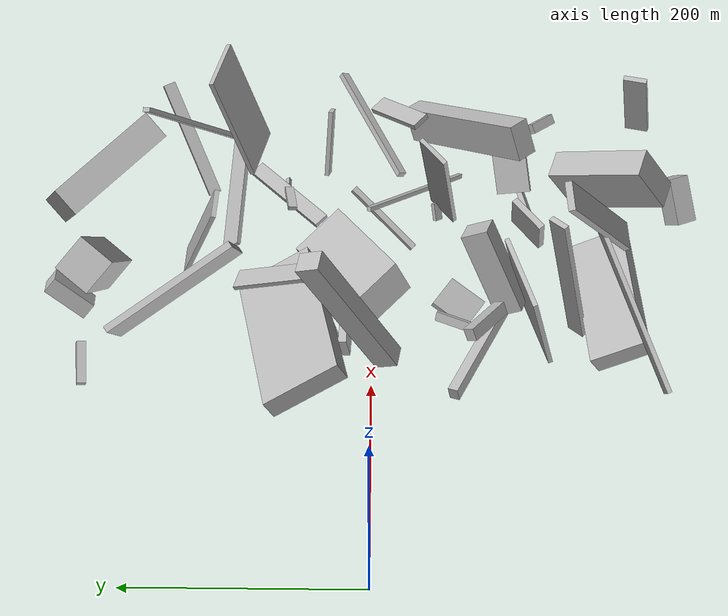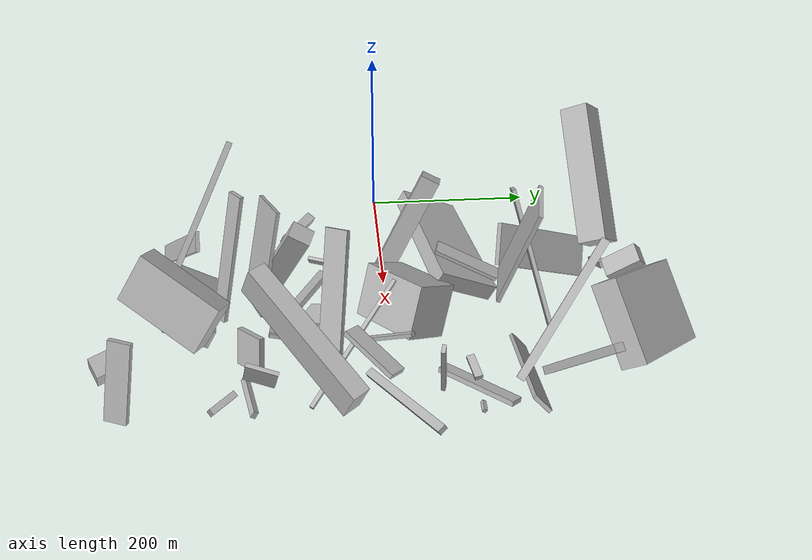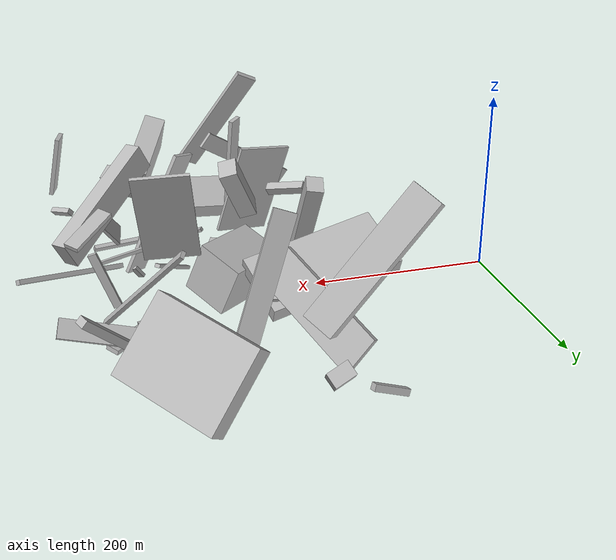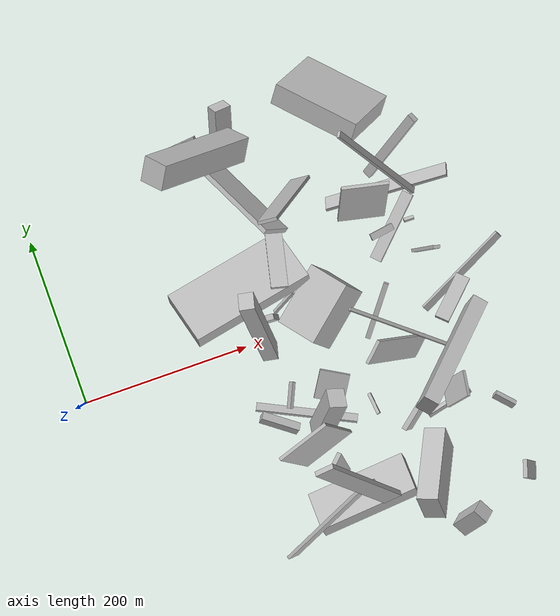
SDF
<sdf version="1.6">
 <world name="default">
  <model name="building_2">
   <static>0</static>
   <pose>206.40266892291086 97.64573193363785 42.467062589102255 0.34001495693390293 -1.0759820120466814 1.466138895373782</pose>
   <link name="link">
    <gravity>0</gravity>
    <pose>0 0 35.0 0 0 0</pose>
    <collision name="collision"><geometry><box><size>18 150 70</size></box></geometry></collision>
    <visual name="visual">
     <cast_shadows>0</cast_shadows>
     <geometry><box><size>18 150 70</size></box></geometry>
     <material>
      <script>
       <uri>model://HANNAS_wall/materials/scripts</uri>
       <uri>model://HANNAS_wall/materials/textures</uri>
       <name>vrc/HANNAS_wall</name>
      </script>
     </material>
    </visual>
   </link>
  </model>
  <model name="building_4">
   <static>0</static>
   <pose>230.5814008588318 16.542779982651883 75.89964702322911 -1.8708917922611166 -1.1182213465139024 1.6601870492882758</pose>
   <link name="link">
    <gravity>0</gravity>
    <pose>0 0 9.0 0 0 0</pose>
    <collision name="collision"><geometry><box><size>150 21 18</size></box></geometry></collision>
    <visual name="visual">
     <cast_shadows>0</cast_shadows>
     <geometry><box><size>150 21 18</size></box></geometry>
     <material>
      <script>
       <uri>model://HANNAS_wall/materials/scripts</uri>
       <uri>model://HANNAS_wall/materials/textures</uri>
       <name>vrc/HANNAS_wall</name>
      </script>
     </material>
    </visual>
   </link>
  </model>
  <model name="building_6">
   <static>0</static>
   <pose>326.7722584482497 41.46983881816085 42.98446345686779 1.639049944582558 -0.38156600741521607 -0.8861657259116525</pose>
   <link name="link">
    <gravity>0</gravity>
    <pose>0 0 38.5 0 0 0</pose>
    <collision name="collision"><geometry><box><size>51 56 77</size></box></geometry></collision>
    <visual name="visual">
     <cast_shadows>0</cast_shadows>
     <geometry><box><size>51 56 77</size></box></geometry>
     <material>
      <script>
       <uri>model://HANNAS_wall/materials/scripts</uri>
       <uri>model://HANNAS_wall/materials/textures</uri>
       <name>vrc/HANNAS_wall</name>
      </script>
     </material>
    </visual>
   </link>
  </model>
  <model name="building_7">
   <static>0</static>
   <pose>432.96805303754945 165.55170697654194 62.2178902019692 2.3838859483390187 0.12865473302979166 2.0039205790137267</pose>
   <link name="link">
    <gravity>0</gravity>
    <pose>0 0 4.0 0 0 0</pose>
    <collision name="collision"><geometry><box><size>11 108 8</size></box></geometry></collision>
    <visual name="visual">
     <cast_shadows>0</cast_shadows>
     <geometry><box><size>11 108 8</size></box></geometry>
     <material>
      <script>
       <uri>model://HANNAS_wall/materials/scripts</uri>
       <uri>model://HANNAS_wall/materials/textures</uri>
       <name>vrc/HANNAS_wall</name>
      </script>
     </material>
    </visual>
   </link>
  </model>
  <model name="building_8">
   <static>0</static>
   <pose>298.4614225298853 145.27724027501364 84.23196244001436 0.9164192326179628 -1.12199980337753 -2.5356248877580874</pose>
   <link name="link">
    <gravity>0</gravity>
    <pose>0 0 2.0 0 0 0</pose>
    <collision name="collision"><geometry><box><size>150 24 4</size></box></geometry></collision>
    <visual name="visual">
     <cast_shadows>0</cast_shadows>
     <geometry><box><size>150 24 4</size></box></geometry>
     <material>
      <script>
       <uri>model://HANNAS_wall/materials/scripts</uri>
       <uri>model://HANNAS_wall/materials/textures</uri>
       <name>vrc/HANNAS_wall</name>
      </script>
     </material>
    </visual>
   </link>
  </model>
  <model name="building_9">
   <static>0</static>
   <pose>233.85433764857123 -219.80555430990395 63.3951492103299 -0.27177671791275543 -0.5675747798481262 0.46306147000633385</pose>
   <link name="link">
    <gravity>0</gravity>
    <pose>0 0 10.5 0 0 0</pose>
    <collision name="collision"><geometry><box><size>150 4 21</size></box></geometry></collision>
    <visual name="visual">
     <cast_shadows>0</cast_shadows>
     <geometry><box><size>150 4 21</size></box></geometry>
     <material>
      <script>
       <uri>model://HANNAS_wall/materials/scripts</uri>
       <uri>model://HANNAS_wall/materials/textures</uri>
       <name>vrc/HANNAS_wall</name>
      </script>
     </material>
    </visual>
   </link>
  </model>
  <model name="building_10">
   <static>0</static>
   <pose>240.1118179338702 -134.7508307327406 67.11712886972529 1.8293175000201372 0.15808941931543688 -2.8125516270373727</pose>
   <link name="link">
    <gravity>0</gravity>
    <pose>0 0 2.0 0 0 0</pose>
    <collision name="collision"><geometry><box><size>67 115 4</size></box></geometry></collision>
    <visual name="visual">
     <cast_shadows>0</cast_shadows>
     <geometry><box><size>67 115 4</size></box></geometry>
     <material>
      <script>
       <uri>model://HANNAS_wall/materials/scripts</uri>
       <uri>model://HANNAS_wall/materials/textures</uri>
       <name>vrc/HANNAS_wall</name>
      </script>
     </material>
    </visual>
   </link>
  </model>
  <model name="building_11">
   <static>0</static>
   <pose>256.49891191816505 -164.61874995743636 75.04376506307032 1.4129905257327797 0.11203924343939826 0.7730237732240869</pose>
   <link name="link">
    <gravity>0</gravity>
    <pose>0 0 2.5 0 0 0</pose>
    <collision name="collision"><geometry><box><size>17 150 5</size></box></geometry></collision>
    <visual name="visual">
     <cast_shadows>0</cast_shadows>
     <geometry><box><size>17 150 5</size></box></geometry>
     <material>
      <script>
       <uri>model://HANNAS_wall/materials/scripts</uri>
       <uri>model://HANNAS_wall/materials/textures</uri>
       <name>vrc/HANNAS_wall</name>
      </script>
     </material>
    </visual>
   </link>
  </model>
  <model name="building_12">
   <static>0</static>
   <pose>295.5063734619634 -84.90417520019616 12.40592652573689 -1.4764268177243278 -0.32138130767627415 1.022089328064097</pose>
   <link name="link">
    <gravity>0</gravity>
    <pose>0 0 18.0 0 0 0</pose>
    <collision name="collision"><geometry><box><size>36 4 36</size></box></geometry></collision>
    <visual name="visual">
     <cast_shadows>0</cast_shadows>
     <geometry><box><size>36 4 36</size></box></geometry>
     <material>
      <script>
       <uri>model://HANNAS_wall/materials/scripts</uri>
       <uri>model://HANNAS_wall/materials/textures</uri>
       <name>vrc/HANNAS_wall</name>
      </script>
     </material>
    </visual>
   </link>
  </model>
  <model name="building_18">
   <static>0</static>
   <pose>359.28134084814855 -8.954483023424952 36.277150653391054 -0.05536335508800259 -0.4596489070086059 0.9241295208221081</pose>
   <link name="link">
    <gravity>0</gravity>
    <pose>0 0 2.0 0 0 0</pose>
    <collision name="collision"><geometry><box><size>75 6 4</size></box></geometry></collision>
    <visual name="visual">
     <cast_shadows>0</cast_shadows>
     <geometry><box><size>75 6 4</size></box></geometry>
     <material>
      <script>
       <uri>model://HANNAS_wall/materials/scripts</uri>
       <uri>model://HANNAS_wall/materials/textures</uri>
       <name>vrc/HANNAS_wall</name>
      </script>
     </material>
    </visual>
   </link>
  </model>
  <model name="building_19">
   <static>0</static>
   <pose>394.99673646948276 75.18833753430336 26.380976672735763 2.9979978192185825 0.179221365558588 -1.4411819232013174</pose>
   <link name="link">
    <gravity>0</gravity>
    <pose>0 0 2.0 0 0 0</pose>
    <collision name="collision"><geometry><box><size>8 29 4</size></box></geometry></collision>
    <visual name="visual">
     <cast_shadows>0</cast_shadows>
     <geometry><box><size>8 29 4</size></box></geometry>
     <material>
      <script>
       <uri>model://HANNAS_wall/materials/scripts</uri>
       <uri>model://HANNAS_wall/materials/textures</uri>
       <name>vrc/HANNAS_wall</name>
      </script>
     </material>
    </visual>
   </link>
  </model>
  <model name="building_21">
   <static>0</static>
   <pose>332.45334651533534 -202.11773842348623 36.27127751107434 -1.7633601151329417 -1.0576921400721508 1.828217838681412</pose>
   <link name="link">
    <gravity>0</gravity>
    <pose>0 0 60.0 0 0 0</pose>
    <collision name="collision"><geometry><box><size>20 49 120</size></box></geometry></collision>
    <visual name="visual">
     <cast_shadows>0</cast_shadows>
     <geometry><box><size>20 49 120</size></box></geometry>
     <material>
      <script>
       <uri>model://HANNAS_wall/materials/scripts</uri>
       <uri>model://HANNAS_wall/materials/textures</uri>
       <name>vrc/HANNAS_wall</name>
      </script>
     </material>
    </visual>
   </link>
  </model>
  <model name="building_26">
   <static>0</static>
   <pose>242.28975078805797 -95.16803252521781 11.173779995629582 -2.929429195351852 0.00021942249513072916 2.6932780795474747</pose>
   <link name="link">
    <gravity>0</gravity>
    <pose>0 0 6.0 0 0 0</pose>
    <collision name="collision"><geometry><box><size>120 9 12</size></box></geometry></collision>
    <visual name="visual">
     <cast_shadows>0</cast_shadows>
     <geometry><box><size>120 9 12</size></box></geometry>
     <material>
      <script>
       <uri>model://HANNAS_wall/materials/scripts</uri>
       <uri>model://HANNAS_wall/materials/textures</uri>
       <name>vrc/HANNAS_wall</name>
      </script>
     </material>
    </visual>
   </link>
  </model>
  <model name="building_31">
   <static>0</static>
   <pose>430.0927651122914 78.62246738992323 4.029632334265228 -0.5413589156684777 0.10850691833300645 -0.020137523512837385</pose>
   <link name="link">
    <gravity>0</gravity>
    <pose>0 0 2.0 0 0 0</pose>
    <collision name="collision"><geometry><box><size>12 4 4</size></box></geometry></collision>
    <visual name="visual">
     <cast_shadows>0</cast_shadows>
     <geometry><box><size>12 4 4</size></box></geometry>
     <material>
      <script>
       <uri>model://HANNAS_wall/materials/scripts</uri>
       <uri>model://HANNAS_wall/materials/textures</uri>
       <name>vrc/HANNAS_wall</name>
      </script>
     </material>
    </visual>
   </link>
  </model>
  <model name="building_33">
   <static>0</static>
   <pose>379.0327093744752 230.94223029166784 64.36837288488105 0.38901982782644384 -0.8813100017967782 -2.6973426119723443</pose>
   <link name="link">
    <gravity>0</gravity>
    <pose>0 0 13.5 0 0 0</pose>
    <collision name="collision"><geometry><box><size>82 106 27</size></box></geometry></collision>
    <visual name="visual">
     <cast_shadows>0</cast_shadows>
     <geometry><box><size>82 106 27</size></box></geometry>
     <material>
      <script>
       <uri>model://HANNAS_wall/materials/scripts</uri>
       <uri>model://HANNAS_wall/materials/textures</uri>
       <name>vrc/HANNAS_wall</name>
      </script>
     </material>
    </visual>
   </link>
  </model>
  <model name="building_35">
   <static>0</static>
   <pose>418.3515454872211 130.29050584909905 27.862196322684035 0.3635152863574398 0.7548072312267607 -1.3753286952927255</pose>
   <link name="link">
    <gravity>0</gravity>
    <pose>0 0 10.0 0 0 0</pose>
    <collision name="collision"><geometry><box><size>4 150 20</size></box></geometry></collision>
    <visual name="visual">
     <cast_shadows>0</cast_shadows>
     <geometry><box><size>4 150 20</size></box></geometry>
     <material>
      <script>
       <uri>model://HANNAS_wall/materials/scripts</uri>
       <uri>model://HANNAS_wall/materials/textures</uri>
       <name>vrc/HANNAS_wall</name>
      </script>
     </material>
    </visual>
   </link>
  </model>
  <model name="building_36">
   <static>0</static>
   <pose>257.366272902417 87.1549365248307 66.01966322168431 -1.6133337442578948 -0.4127342096912818 -1.7905705952614115</pose>
   <link name="link">
    <gravity>0</gravity>
    <pose>0 0 10.0 0 0 0</pose>
    <collision name="collision"><geometry><box><size>71 4 20</size></box></geometry></collision>
    <visual name="visual">
     <cast_shadows>0</cast_shadows>
     <geometry><box><size>71 4 20</size></box></geometry>
     <material>
      <script>
       <uri>model://HANNAS_wall/materials/scripts</uri>
       <uri>model://HANNAS_wall/materials/textures</uri>
       <name>vrc/HANNAS_wall</name>
      </script>
     </material>
    </visual>
   </link>
  </model>
  <model name="building_37">
   <static>0</static>
   <pose>376.70393223572546 -171.29439315398926 70.79334174652479 1.0828386889937647 -0.25770660992457084 -0.3367184912585648</pose>
   <link name="link">
    <gravity>0</gravity>
    <pose>0 0 45.0 0 0 0</pose>
    <collision name="collision"><geometry><box><size>25 52 90</size></box></geometry></collision>
    <visual name="visual">
     <cast_shadows>0</cast_shadows>
     <geometry><box><size>25 52 90</size></box></geometry>
     <material>
      <script>
       <uri>model://HANNAS_wall/materials/scripts</uri>
       <uri>model://HANNAS_wall/materials/textures</uri>
       <name>vrc/HANNAS_wall</name>
      </script>
     </material>
    </visual>
   </link>
  </model>
  <model name="building_38">
   <static>0</static>
   <pose>267.16527973031646 225.36557299740446 81.90118932140709 0.5276585331683915 -0.5113620966049852 -0.8168950856487728</pose>
   <link name="link">
    <gravity>0</gravity>
    <pose>0 0 75.0 0 0 0</pose>
    <collision name="collision"><geometry><box><size>31 31 150</size></box></geometry></collision>
    <visual name="visual">
     <cast_shadows>0</cast_shadows>
     <geometry><box><size>31 31 150</size></box></geometry>
     <material>
      <script>
       <uri>model://HANNAS_wall/materials/scripts</uri>
       <uri>model://HANNAS_wall/materials/textures</uri>
       <name>vrc/HANNAS_wall</name>
      </script>
     </material>
    </visual>
   </link>
  </model>
  <model name="building_40">
   <static>0</static>
   <pose>374.58540155581346 98.62771809211378 103.96748331324689 -0.07327283882341565 -0.3289598755838441 -1.7586307325287616</pose>
   <link name="link">
    <gravity>0</gravity>
    <pose>0 0 50.0 0 0 0</pose>
    <collision name="collision"><geometry><box><size>4 54 100</size></box></geometry></collision>
    <visual name="visual">
     <cast_shadows>0</cast_shadows>
     <geometry><box><size>4 54 100</size></box></geometry>
     <material>
      <script>
       <uri>model://HANNAS_wall/materials/scripts</uri>
       <uri>model://HANNAS_wall/materials/textures</uri>
       <name>vrc/HANNAS_wall</name>
      </script>
     </material>
    </visual>
   </link>
  </model>
  <model name="building_43">
   <static>0</static>
   <pose>403.6976778707368 -137.53952563839715 8.932596260398427 0.02903599033045569 0.9828697139682852 -1.3210381074643278</pose>
   <link name="link">
    <gravity>0</gravity>
    <pose>0 0 2.5 0 0 0</pose>
    <collision name="collision"><geometry><box><size>7 57 5</size></box></geometry></collision>
    <visual name="visual">
     <cast_shadows>0</cast_shadows>
     <geometry><box><size>7 57 5</size></box></geometry>
     <material>
      <script>
       <uri>model://HANNAS_wall/materials/scripts</uri>
       <uri>model://HANNAS_wall/materials/textures</uri>
       <name>vrc/HANNAS_wall</name>
      </script>
     </material>
    </visual>
   </link>
  </model>
  <model name="building_45">
   <static>0</static>
   <pose>464.36869051894297 -4.3236814805347965 75.86135685386489 -1.2352973259119817 0.16443929729467316 2.3869372152676185</pose>
   <link name="link">
    <gravity>0</gravity>
    <pose>0 0 29.5 0 0 0</pose>
    <collision name="collision"><geometry><box><size>17 5 59</size></box></geometry></collision>
    <visual name="visual">
     <cast_shadows>0</cast_shadows>
     <geometry><box><size>17 5 59</size></box></geometry>
     <material>
      <script>
       <uri>model://HANNAS_wall/materials/scripts</uri>
       <uri>model://HANNAS_wall/materials/textures</uri>
       <name>vrc/HANNAS_wall</name>
      </script>
     </material>
    </visual>
   </link>
  </model>
  <model name="building_46">
   <static>0</static>
   <pose>379.4660056413571 -266.56149675429873 38.30515886851873 1.8107258736530791 -0.8139601545365065 0.3245678800314987</pose>
   <link name="link">
    <gravity>0</gravity>
    <pose>0 0 10.0 0 0 0</pose>
    <collision name="collision"><geometry><box><size>42 20 20</size></box></geometry></collision>
    <visual name="visual">
     <cast_shadows>0</cast_shadows>
     <geometry><box><size>42 20 20</size></box></geometry>
     <material>
      <script>
       <uri>model://HANNAS_wall/materials/scripts</uri>
       <uri>model://HANNAS_wall/materials/textures</uri>
       <name>vrc/HANNAS_wall</name>
      </script>
     </material>
    </visual>
   </link>
  </model>
  <model name="building_47">
   <static>0</static>
   <pose>353.87172345370266 -68.209227403788 76.87848546291477 0.9712564252539213 -1.163840903833142 2.9010367872298395</pose>
   <link name="link">
    <gravity>0</gravity>
    <pose>0 0 15.0 0 0 0</pose>
    <collision name="collision"><geometry><box><size>150 4 30</size></box></geometry></collision>
    <visual name="visual">
     <cast_shadows>0</cast_shadows>
     <geometry><box><size>150 4 30</size></box></geometry>
     <material>
      <script>
       <uri>model://HANNAS_wall/materials/scripts</uri>
       <uri>model://HANNAS_wall/materials/textures</uri>
       <name>vrc/HANNAS_wall</name>
      </script>
     </material>
    </visual>
   </link>
  </model>
  <model name="building_49">
   <static>0</static>
   <pose>234.06228917628218 19.555098689833567 24.15752516619649 2.0260400503712215 -1.3179023736122104 2.6171310330593647</pose>
   <link name="link">
    <gravity>0</gravity>
    <pose>0 0 3.5 0 0 0</pose>
    <collision name="collision"><geometry><box><size>27 22 7</size></box></geometry></collision>
    <visual name="visual">
     <cast_shadows>0</cast_shadows>
     <geometry><box><size>27 22 7</size></box></geometry>
     <material>
      <script>
       <uri>model://HANNAS_wall/materials/scripts</uri>
       <uri>model://HANNAS_wall/materials/textures</uri>
       <name>vrc/HANNAS_wall</name>
      </script>
     </material>
    </visual>
   </link>
  </model>
  <model name="building_51">
   <static>0</static>
   <pose>469.4254193559684 -245.81862988387476 43.60319243843392 -0.20774528085201197 0.0879576775512746 1.2579647585937443</pose>
   <link name="link">
    <gravity>0</gravity>
    <pose>0 0 38.0 0 0 0</pose>
    <collision name="collision"><geometry><box><size>21 5 76</size></box></geometry></collision>
    <visual name="visual">
     <cast_shadows>0</cast_shadows>
     <geometry><box><size>21 5 76</size></box></geometry>
     <material>
      <script>
       <uri>model://HANNAS_wall/materials/scripts</uri>
       <uri>model://HANNAS_wall/materials/textures</uri>
       <name>vrc/HANNAS_wall</name>
      </script>
     </material>
    </visual>
   </link>
  </model>
  <model name="building_54">
   <static>0</static>
   <pose>473.03775570122883 -165.43604680866326 50.525520917558225 1.3517737014277522 -0.704159190751671 -2.24865850357071</pose>
   <link name="link">
    <gravity>0</gravity>
    <pose>0 0 13.5 0 0 0</pose>
    <collision name="collision"><geometry><box><size>6 9 27</size></box></geometry></collision>
    <visual name="visual">
     <cast_shadows>0</cast_shadows>
     <geometry><box><size>6 9 27</size></box></geometry>
     <material>
      <script>
       <uri>model://HANNAS_wall/materials/scripts</uri>
       <uri>model://HANNAS_wall/materials/textures</uri>
       <name>vrc/HANNAS_wall</name>
      </script>
     </material>
    </visual>
   </link>
  </model>
  <model name="building_55">
   <static>0</static>
   <pose>410.33657090452766 148.4586725507831 100.83993381551697 2.0850182077510317 0.6340171180801576 2.9700567532287896</pose>
   <link name="link">
    <gravity>0</gravity>
    <pose>0 0 4.0 0 0 0</pose>
    <collision name="collision"><geometry><box><size>4 150 8</size></box></geometry></collision>
    <visual name="visual">
     <cast_shadows>0</cast_shadows>
     <geometry><box><size>4 150 8</size></box></geometry>
     <material>
      <script>
       <uri>model://HANNAS_wall/materials/scripts</uri>
       <uri>model://HANNAS_wall/materials/textures</uri>
       <name>vrc/HANNAS_wall</name>
      </script>
     </material>
    </visual>
   </link>
  </model>
  <model name="building_56">
   <static>0</static>
   <pose>428.2932267151627 -92.16639521538522 86.9441263657157 1.510684095651747 -0.5081550235235796 -2.386890961664476</pose>
   <link name="link">
    <gravity>0</gravity>
    <pose>0 0 9.5 0 0 0</pose>
    <collision name="collision"><geometry><box><size>150 32 19</size></box></geometry></collision>
    <visual name="visual">
     <cast_shadows>0</cast_shadows>
     <geometry><box><size>150 32 19</size></box></geometry>
     <material>
      <script>
       <uri>model://HANNAS_wall/materials/scripts</uri>
       <uri>model://HANNAS_wall/materials/textures</uri>
       <name>vrc/HANNAS_wall</name>
      </script>
     </material>
    </visual>
   </link>
  </model>
  <model name="building_59">
   <static>0</static>
   <pose>272.8719597392662 42.85127784916644 19.412757999326516 2.3634354182577786 -0.6339010531688012 -1.6140189358355175</pose>
   <link name="link">
    <gravity>0</gravity>
    <pose>0 0 19.0 0 0 0</pose>
    <collision name="collision"><geometry><box><size>4 4 38</size></box></geometry></collision>
    <visual name="visual">
     <cast_shadows>0</cast_shadows>
     <geometry><box><size>4 4 38</size></box></geometry>
     <material>
      <script>
       <uri>model://HANNAS_wall/materials/scripts</uri>
       <uri>model://HANNAS_wall/materials/textures</uri>
       <name>vrc/HANNAS_wall</name>
      </script>
     </material>
    </visual>
   </link>
  </model>
  <model name="building_61">
   <static>0</static>
   <pose>435.6577516902721 41.86684584739222 56.40864382246873 1.540339828748705 0.35986649444511754 -0.2708315658652644</pose>
   <link name="link">
    <gravity>0</gravity>
    <pose>0 0 2.0 0 0 0</pose>
    <collision name="collision"><geometry><box><size>9 64 4</size></box></geometry></collision>
    <visual name="visual">
     <cast_shadows>0</cast_shadows>
     <geometry><box><size>9 64 4</size></box></geometry>
     <material>
      <script>
       <uri>model://HANNAS_wall/materials/scripts</uri>
       <uri>model://HANNAS_wall/materials/textures</uri>
       <name>vrc/HANNAS_wall</name>
      </script>
     </material>
    </visual>
   </link>
  </model>
  <model name="building_64">
   <static>0</static>
   <pose>393.33466701940466 -61.594788668017856 10.607850355925667 -1.0299600254432977 -0.9275023552856417 0.23973648979901704</pose>
   <link name="link">
    <gravity>0</gravity>
    <pose>0 0 4.0 0 0 0</pose>
    <collision name="collision"><geometry><box><size>16 4 8</size></box></geometry></collision>
    <visual name="visual">
     <cast_shadows>0</cast_shadows>
     <geometry><box><size>16 4 8</size></box></geometry>
     <material>
      <script>
       <uri>model://HANNAS_wall/materials/scripts</uri>
       <uri>model://HANNAS_wall/materials/textures</uri>
       <name>vrc/HANNAS_wall</name>
      </script>
     </material>
    </visual>
   </link>
  </model>
  <model name="building_66">
   <static>0</static>
   <pose>416.9437638446642 -126.79406982270353 41.583116369391476 0.9719001827787263 -0.2957391346667976 -1.7220740531861434</pose>
   <link name="link">
    <gravity>0</gravity>
    <pose>0 0 2.0 0 0 0</pose>
    <collision name="collision"><geometry><box><size>31 43 4</size></box></geometry></collision>
    <visual name="visual">
     <cast_shadows>0</cast_shadows>
     <geometry><box><size>31 43 4</size></box></geometry>
     <material>
      <script>
       <uri>model://HANNAS_wall/materials/scripts</uri>
       <uri>model://HANNAS_wall/materials/textures</uri>
       <name>vrc/HANNAS_wall</name>
      </script>
     </material>
    </visual>
   </link>
  </model>
  <model name="building_68">
   <static>0</static>
   <pose>206.289101563195 -96.32450308062057 74.58692574614768 0.5597938355513368 -0.19279669946351916 2.4966690708094994</pose>
   <link name="link">
    <gravity>0</gravity>
    <pose>0 0 5.5 0 0 0</pose>
    <collision name="collision"><geometry><box><size>46 10 11</size></box></geometry></collision>
    <visual name="visual">
     <cast_shadows>0</cast_shadows>
     <geometry><box><size>46 10 11</size></box></geometry>
     <material>
      <script>
       <uri>model://HANNAS_wall/materials/scripts</uri>
       <uri>model://HANNAS_wall/materials/textures</uri>
       <name>vrc/HANNAS_wall</name>
      </script>
     </material>
    </visual>
   </link>
  </model>
  <model name="building_71">
   <static>0</static>
   <pose>303.0721810788049 -218.02239554366537 78.63401116349283 0.47983950746153686 0.4324441473225535 -3.020602874815202</pose>
   <link name="link">
    <gravity>0</gravity>
    <pose>0 0 75.0 0 0 0</pose>
    <collision name="collision"><geometry><box><size>24 6 150</size></box></geometry></collision>
    <visual name="visual">
     <cast_shadows>0</cast_shadows>
     <geometry><box><size>24 6 150</size></box></geometry>
     <material>
      <script>
       <uri>model://HANNAS_wall/materials/scripts</uri>
       <uri>model://HANNAS_wall/materials/textures</uri>
       <name>vrc/HANNAS_wall</name>
      </script>
     </material>
    </visual>
   </link>
  </model>
  <model name="building_73">
   <static>0</static>
   <pose>320.1235179242056 -112.30050812833608 14.400416997897919 -0.2939161319637246 -0.18294297023310555 0.16187843965381177</pose>
   <link name="link">
    <gravity>0</gravity>
    <pose>0 0 2.0 0 0 0</pose>
    <collision name="collision"><geometry><box><size>4 27 4</size></box></geometry></collision>
    <visual name="visual">
     <cast_shadows>0</cast_shadows>
     <geometry><box><size>4 27 4</size></box></geometry>
     <material>
      <script>
       <uri>model://HANNAS_wall/materials/scripts</uri>
       <uri>model://HANNAS_wall/materials/textures</uri>
       <name>vrc/HANNAS_wall</name>
      </script>
     </material>
    </visual>
   </link>
  </model>
  <model name="building_74">
   <static>0</static>
   <pose>233.35796229626422 -70.04608547364221 53.659398888484475 3.132623690746894 0.5366898791777559 -0.42528689315757967</pose>
   <link name="link">
    <gravity>0</gravity>
    <pose>0 0 4.0 0 0 0</pose>
    <collision name="collision"><geometry><box><size>4 31 8</size></box></geometry></collision>
    <visual name="visual">
     <cast_shadows>0</cast_shadows>
     <geometry><box><size>4 31 8</size></box></geometry>
     <material>
      <script>
       <uri>model://HANNAS_wall/materials/scripts</uri>
       <uri>model://HANNAS_wall/materials/textures</uri>
       <name>vrc/HANNAS_wall</name>
      </script>
     </material>
    </visual>
   </link>
  </model>
  <model name="building_75">
   <static>0</static>
   <pose>412.30390171811115 -26.02457196647179 38.14022573596584 1.3639753377819397 -0.5020551118739033 2.1394231942829287</pose>
   <link name="link">
    <gravity>0</gravity>
    <pose>0 0 61.5 0 0 0</pose>
    <collision name="collision"><geometry><box><size>8 5 123</size></box></geometry></collision>
    <visual name="visual">
     <cast_shadows>0</cast_shadows>
     <geometry><box><size>8 5 123</size></box></geometry>
     <material>
      <script>
       <uri>model://HANNAS_wall/materials/scripts</uri>
       <uri>model://HANNAS_wall/materials/textures</uri>
       <name>vrc/HANNAS_wall</name>
      </script>
     </material>
    </visual>
   </link>
  </model>
  <model name="building_77">
   <static>0</static>
   <pose>266.1458683205866 -93.31262887598979 74.97131590529501 0.5317133194246363 -0.9826710744315519 0.8122824033988716</pose>
   <link name="link">
    <gravity>0</gravity>
    <pose>0 0 12.0 0 0 0</pose>
    <collision name="collision"><geometry><box><size>80 21 24</size></box></geometry></collision>
    <visual name="visual">
     <cast_shadows>0</cast_shadows>
     <geometry><box><size>80 21 24</size></box></geometry>
     <material>
      <script>
       <uri>model://HANNAS_wall/materials/scripts</uri>
       <uri>model://HANNAS_wall/materials/textures</uri>
       <name>vrc/HANNAS_wall</name>
      </script>
     </material>
    </visual>
   </link>
  </model>
  <model name="building_80">
   <static>0</static>
   <pose>358.6383872099611 -137.50198795363556 30.162223092704625 1.378457503933063 -0.1420167531503096 0.6961680023069862</pose>
   <link name="link">
    <gravity>0</gravity>
    <pose>0 0 3.0 0 0 0</pose>
    <collision name="collision"><geometry><box><size>37 37 6</size></box></geometry></collision>
    <visual name="visual">
     <cast_shadows>0</cast_shadows>
     <geometry><box><size>37 37 6</size></box></geometry>
     <material>
      <script>
       <uri>model://HANNAS_wall/materials/scripts</uri>
       <uri>model://HANNAS_wall/materials/textures</uri>
       <name>vrc/HANNAS_wall</name>
      </script>
     </material>
    </visual>
   </link>
  </model>
  <model name="building_81">
   <static>0</static>
   <pose>403.5747217745658 82.70430271171341 12.848897953385324 -0.2212281965445931 -1.3513611432690749 2.5714565763611006</pose>
   <link name="link">
    <gravity>0</gravity>
    <pose>0 0 7.0 0 0 0</pose>
    <collision name="collision"><geometry><box><size>5 87 14</size></box></geometry></collision>
    <visual name="visual">
     <cast_shadows>0</cast_shadows>
     <geometry><box><size>5 87 14</size></box></geometry>
     <material>
      <script>
       <uri>model://HANNAS_wall/materials/scripts</uri>
       <uri>model://HANNAS_wall/materials/textures</uri>
       <name>vrc/HANNAS_wall</name>
      </script>
     </material>
    </visual>
   </link>
  </model>
  <model name="building_83">
   <static>0</static>
   <pose>381.1350374843459 -39.091066857649324 51.859555137358285 -2.905608519228062 -0.47064308391037857 2.4608111824128365</pose>
   <link name="link">
    <gravity>0</gravity>
    <pose>0 0 2.0 0 0 0</pose>
    <collision name="collision"><geometry><box><size>150 4 4</size></box></geometry></collision>
    <visual name="visual">
     <cast_shadows>0</cast_shadows>
     <geometry><box><size>150 4 4</size></box></geometry>
     <material>
      <script>
       <uri>model://HANNAS_wall/materials/scripts</uri>
       <uri>model://HANNAS_wall/materials/textures</uri>
       <name>vrc/HANNAS_wall</name>
      </script>
     </material>
    </visual>
   </link>
  </model>
  <model name="building_85">
   <static>0</static>
   <pose>263.5976186283803 165.5825653045046 47.552821898025925 0.4520282720363501 0.41180066366518603 -2.4921103829162004</pose>
   <link name="link">
    <gravity>0</gravity>
    <pose>0 0 22.0 0 0 0</pose>
    <collision name="collision"><geometry><box><size>6 128 44</size></box></geometry></collision>
    <visual name="visual">
     <cast_shadows>0</cast_shadows>
     <geometry><box><size>6 128 44</size></box></geometry>
     <material>
      <script>
       <uri>model://HANNAS_wall/materials/scripts</uri>
       <uri>model://HANNAS_wall/materials/textures</uri>
       <name>vrc/HANNAS_wall</name>
      </script>
     </material>
    </visual>
   </link>
  </model>
  <model name="building_88">
   <static>0</static>
   <pose>253.86515864002814 243.49286565835953 38.30254219554798 0.6466104206270408 0.721698386807559 2.136051044429965</pose>
   <link name="link">
    <gravity>0</gravity>
    <pose>0 0 20.5 0 0 0</pose>
    <collision name="collision"><geometry><box><size>15 22 41</size></box></geometry></collision>
    <visual name="visual">
     <cast_shadows>0</cast_shadows>
     <geometry><box><size>15 22 41</size></box></geometry>
     <material>
      <script>
       <uri>model://HANNAS_wall/materials/scripts</uri>
       <uri>model://HANNAS_wall/materials/textures</uri>
       <name>vrc/HANNAS_wall</name>
      </script>
     </material>
    </visual>
   </link>
  </model>
  <model name="building_90">
   <static>0</static>
   <pose>207.48572359793877 244.19860501319536 19.633159483023523 1.000615733425515 -1.1367234401588506 -2.4516124947912323</pose>
   <link name="link">
    <gravity>0</gravity>
    <pose>0 0 4.0 0 0 0</pose>
    <collision name="collision"><geometry><box><size>7 37 8</size></box></geometry></collision>
    <visual name="visual">
     <cast_shadows>0</cast_shadows>
     <geometry><box><size>7 37 8</size></box></geometry>
     <material>
      <script>
       <uri>model://HANNAS_wall/materials/scripts</uri>
       <uri>model://HANNAS_wall/materials/textures</uri>
       <name>vrc/HANNAS_wall</name>
      </script>
     </material>
    </visual>
   </link>
  </model>
 </world>
</sdf>
